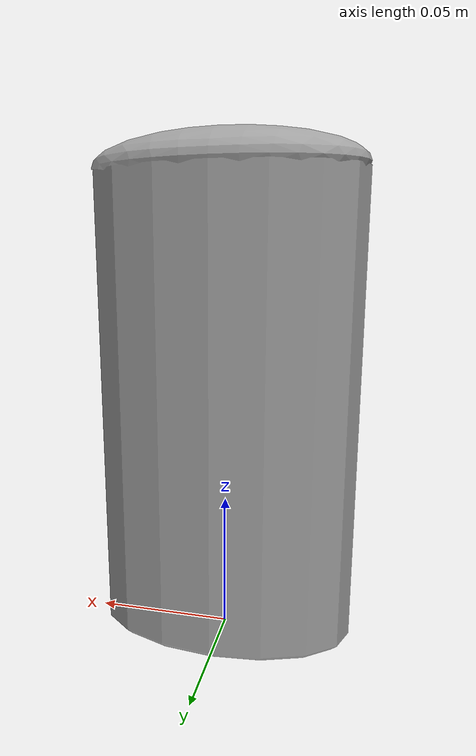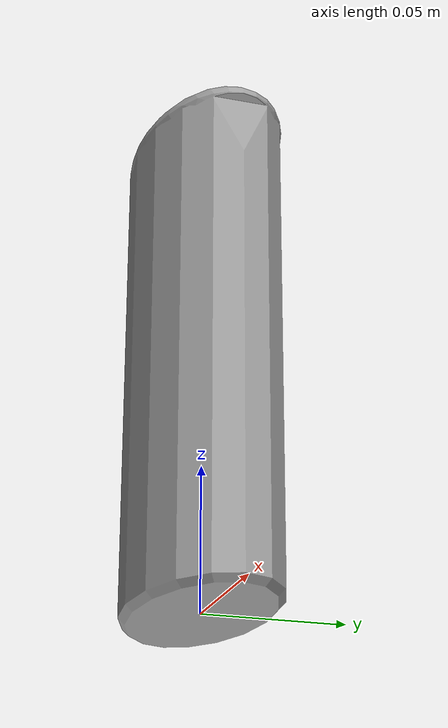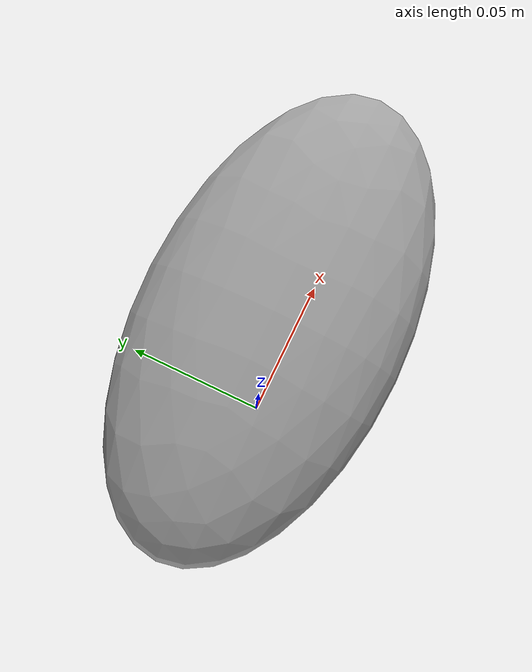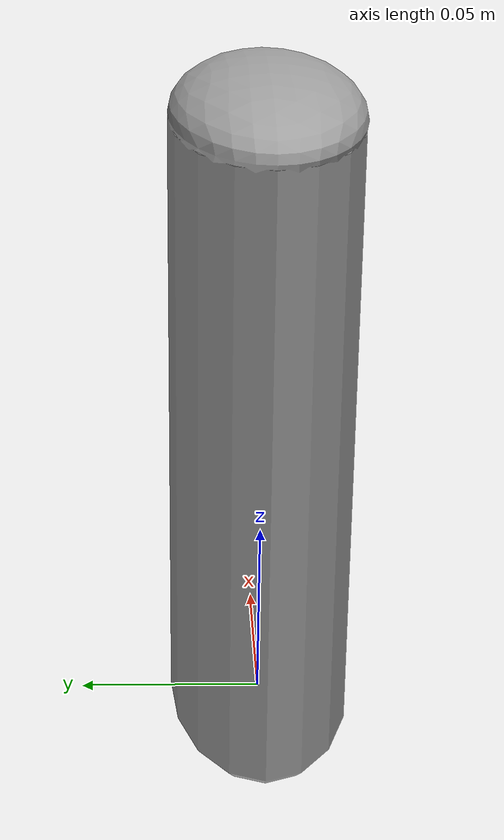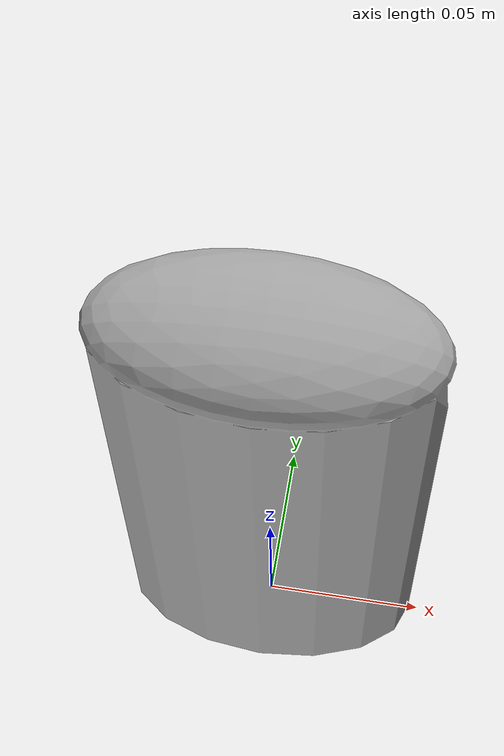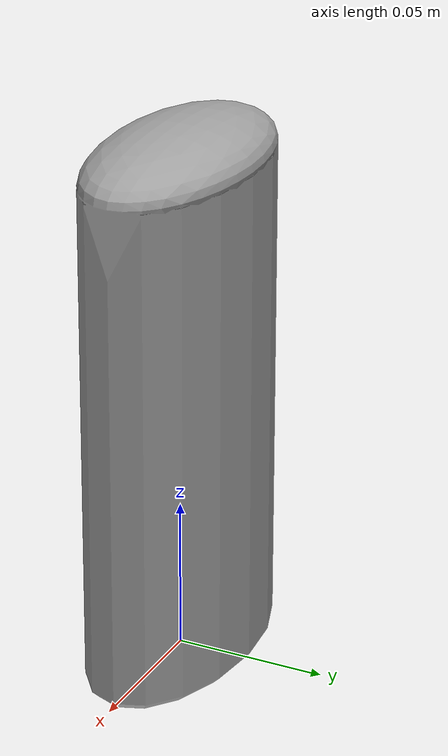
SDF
<?xml version="1.0" ?>
<sdf version="1.0">
  <model name="showergel">
    <static>true</static>
    <link name="body">
      <visual name="visual">
        <geometry>
          <mesh><uri>model://showergel/model.dae</uri></mesh>
        </geometry>
      </visual>
    </link>
  </model>
</sdf>
